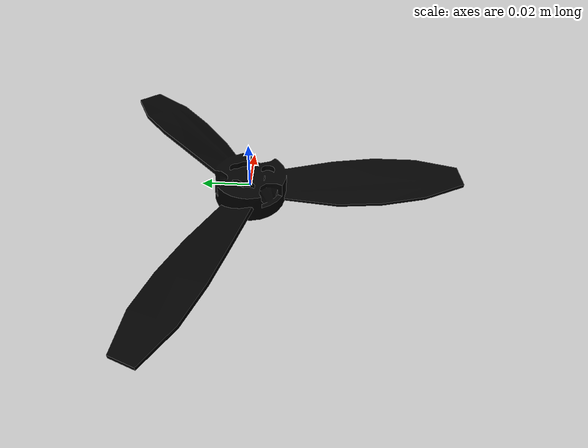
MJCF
<mujoco model="helice_preta">
  <default>
    <default class="visual">
      <geom group="2" type="mesh" contype="0" conaffinity="0"/>
    </default>
    <default class="collision">
      <geom group="3" type="mesh"/>
    </default>
  </default>
  <asset>
    <material name="14_-_Default_0" specular="0.0" shininess="0.0" rgba="0.000000 0.000000 0.000000 1.000000"/>
    <mesh file="helice_preta.obj"/>
  </asset>
  <worldbody>
    <body name="helice_preta">
      <geom material="14_-_Default_0" mesh="helice_preta" class="visual"/>
      <geom mesh="helice_preta" class="collision"/>
    </body>
  </worldbody>
</mujoco>
